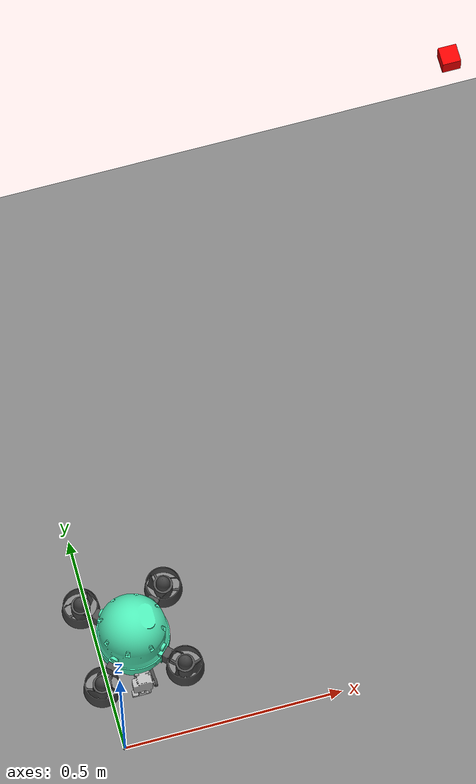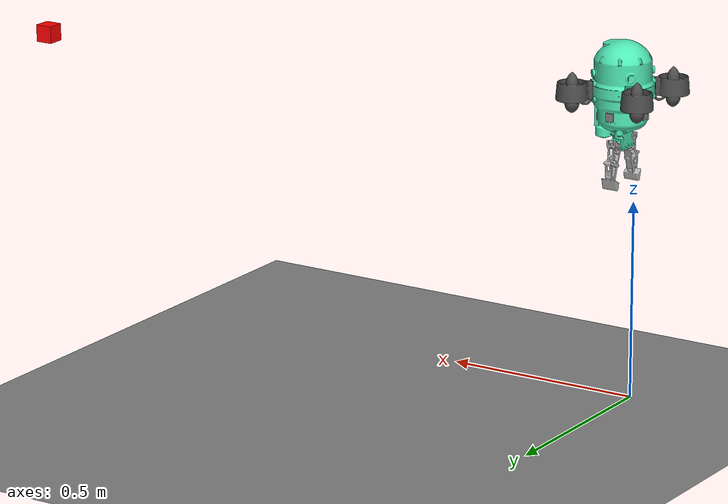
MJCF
<?xml version="1.0" encoding="utf-8"?>
<mujoco model="qauv_track">
    <option timestep="0.002" gravity="0 0 -9.81" integrator="implicitfast" density="1000" viscosity="0.0009">
        <flag passive="enable"/>
    </option>

    <compiler meshdir="/home/zb/qauv_ws/src/mujoco_pkg/mujoco_pkg/assets" angle="radian" autolimits="true"/>

    <visual>
        <global realtime="1"/>
        <quality shadowsize="4096" numslices="28" offsamples="4"/>
        <headlight diffuse="1 1 1" specular="0.5 0.5 0.5" active="1"/>
        <rgba fog="1 1 1 1" haze="1 1 1 1"/>
    </visual>

    <asset>
        <mesh file="body_no_steer.stl"/>
        <mesh file="prop_left.stl"/>
        <mesh file="prop_right.stl"/>
        <mesh file="steer.stl"/>
        <mesh file="belt.stl"/>
        <mesh file="finger.stl"/>

        <texture name="sky" type="skybox" file="assets/desert.png" gridsize="3 4" gridlayout=".U..LFRB.D.."/>

        <texture name="ground" type="2d" builtin="checker" rgb1="0.1 0.1 0.1" rgb2="0.9 0.9 0.9" width="256" height="256" mark="cross" markrgb="0.8 0.8 0.8"/>
        <material name="ground" texture="ground" reflectance="0" texrepeat="1 1" texuniform="true"/>
    </asset>

    <default>
        <default class="friction">
            <geom condim="4" friction="0.9 0.5 0.1" solimp="0.9 0.95 0.001 0.5 2" solref="0.02 1"/>
        </default>
        <default class="fluid">
            <geom fluidshape="ellipsoid" fluidcoef="1.2 1.0 1.2 0.1 0.1"/>
        </default>
    </default>

    <worldbody>
        <light type="directional" pos="30 30 30" dir="0 -1 -1" diffuse="0.5 0.5 0.5" ambient="0.3 0.3 0.3" specular="0.5 0.5 0.5"/>

        <geom name="ground" type="plane" material="ground" pos="0 0 0" size="5 5 0.1" class="friction"/>

        <body name="qauv" pos="0.035 0 0.8">
            <joint name="body_joint" type="free"/>
            <geom name="body_no_steer" type="mesh" mesh="body_no_steer" rgba="0.3 0.9 0.7 1" mass="2.466" class="fluid"/>
            <geom name="prop_1" type="mesh" mesh="prop_left" pos="0.0891332 -0.0891332 -0.00535" rgba="0.3 0.3 0.3 1" mass="0.17" class="fluid"/>
            <geom name="prop_2" type="mesh" mesh="prop_right" pos="-0.0891332 -0.0891332 -0.00535" rgba="0.3 0.3 0.3 1" mass="0.17" class="fluid"/>
            <geom name="prop_3" type="mesh" mesh="prop_left" pos="-0.0891332 0.0891332 -0.00535" quat="0 0 0 1" rgba="0.3 0.3 0.3 1" mass="0.17" class="fluid"/>
            <geom name="prop_4" type="mesh" mesh="prop_right" pos="0.0891332 0.0891332 -0.00535" quat="0 0 0 1" rgba="0.3 0.3 0.3 1" mass="0.17" class="fluid"/>
            <geom name="steer" type="mesh" mesh="steer" pos="-0.0102289 -0.0650948 -0.08505" rgba="0.7 0.7 0.7 1" mass="0.09"/>
            <geom name="belt" type="mesh" mesh="belt" pos="0.0256 -0.0826079 -0.109692" rgba="0.3 0.3 0.3 1" mass="0.01"/>
            <geom name="balance_weight_1" type="box" pos="-0.062 0 -0.08" quat="0.7071 0 0 0.7071" rgba="0.5 0.5 0.5 1" size="0.01 0.002 0.01" mass="0.106"/>
            <geom name="balance_weight_2" type="box" pos="0 0.062 -0.08" quat="1 0 0 0" rgba="0.5 0.5 0.5 1" size="0.01 0.002 0.01" mass="0.128"/>

            <body name="fing_1" pos="0 -0.02 -0.163">
                <joint name="fing_1_joint" type="hinge" axis="1 0 0" damping="0.005" limited="true" range="0 0.4"/>
                <geom name="fing_1" type="mesh" mesh="finger" rgba="0.7 0.7 0.7 1" mass="0.035" class="friction"/>
            </body>

            <body name="fing_2" pos="0 0.02 -0.163" quat="0 0 0 1">
                <joint name="fing_2_joint" type="hinge" axis="1 0 0" damping="0.005" limited="true" range="0 0.4"/>
                <geom name="fing_2" type="mesh" mesh="finger" rgba="0.7 0.7 0.7 1" mass="0.035" class="friction"/>
            </body>

            <site name="prop_1_site" pos="0.0891332 0.0891332 -0.01528"/>
            <site name="prop_2_site" pos="-0.0891332 0.0891332 -0.01528"/>
            <site name="prop_3_site" pos="-0.0891332 -0.0891332 -0.01528"/>
            <site name="prop_4_site" pos="0.0891332 -0.0891332 -0.01528"/>
            <site name="buoyancy_site" pos="0 0 -0.013"/>
            <site name="imu_site" pos="0 0 0"/>
            <site name="dep_site" pos="-0.014 0.0376 -0.127"/>
            <site name="cam_site" pos="-0.035 0 -0.11"/>

            <camera name="cam" mode="fixed" fovy="45" pos="-0.03 0 -0.11" quat="0.707106 0 0 0.707106"/>
        </body>

        <body name="object" pos="1 1 1" gravcomp="1">
            <joint name="obj_joint" type="free"/>
            <geom name="object" type="box" rgba="1 0 0 1" size="0.02 0.02 0.02" mass="0.01"/>
        </body>

        <site name="world_z" pos="0 0 0"/>
    </worldbody>

    <contact>
        <exclude body1="qauv" body2="fing_1"/>
        <exclude body1="qauv" body2="fing_2"/>
    </contact>

    <tendon>
        <fixed name="grasping">
            <joint joint="fing_1_joint" coef="0.5"/>
            <joint joint="fing_2_joint" coef="0.5"/>
        </fixed>
    </tendon>

    <equality>
        <joint joint1="fing_1_joint" joint2="fing_2_joint"/>
    </equality>

    <actuator>
        <motor name="prop_1_act" gear="0 0 1 0 0 -1.2e-03" site="prop_1_site" ctrllimited="true" ctrlrange="-15 15"/>
        <motor name="prop_2_act" gear="0 0 1 0 0 1.2e-03" site="prop_2_site" ctrllimited="true" ctrlrange="-15 15"/>
        <motor name="prop_3_act" gear="0 0 1 0 0 -1.2e-03" site="prop_3_site" ctrllimited="true" ctrlrange="-15 15"/>
        <motor name="prop_4_act" gear="0 0 1 0 0 1.2e-03" site="prop_4_site" ctrllimited="true" ctrlrange="-15 15"/>
        <general name="grasping" tendon="grasping" gear="1 0 0 0 0 0" ctrllimited="true" ctrlrange="0 1" biastype="affine" biasprm="-0.1 0 0 0 0 0"/>

        <!-- 重力=3.55*9.81=34.8255 -->
        <general name="buoyancy" site="buoyancy_site" refsite="world_z"
            gaintype="fixed"   gainprm="0 0 0 0 0 0"
            biastype="affine"  biasprm="36.2 0 0 0 0 0"
            gear="0 0 1 0 0 0" ctrllimited="false"/>
    </actuator>

    <sensor>
        <framequat name="body_quat" objtype="site" objname="imu_site"/>
        <gyro name="body_gyro" site="imu_site"/>
        <accelerometer name="body_acce" site="imu_site"/>
        <framepos name="body_dep" objtype="site" objname="dep_site"/>
    </sensor>
</mujoco>
